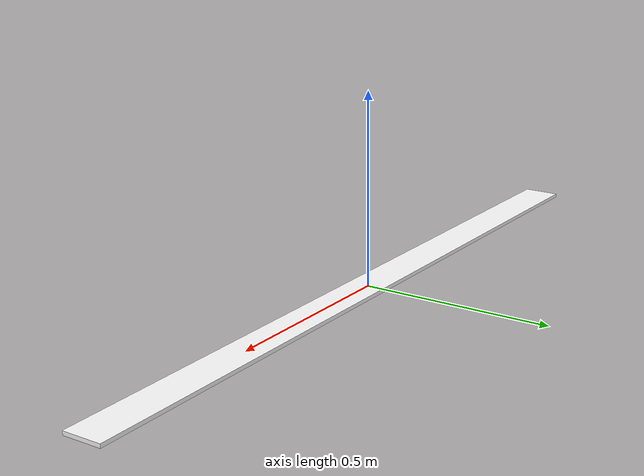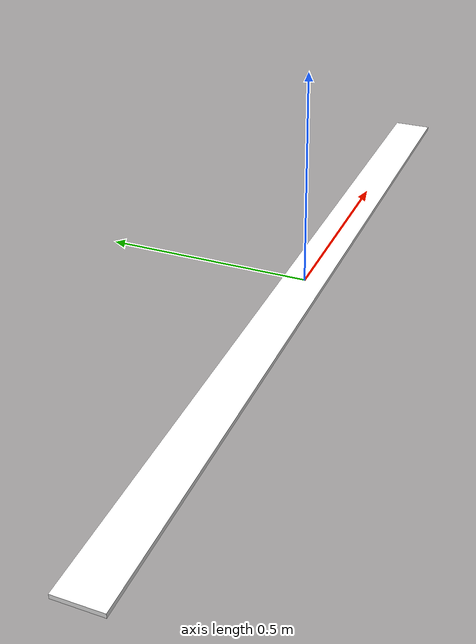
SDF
<?xml version="1.0"?>
<sdf version="1.7">
  <model name="white_line">
    <static>true</static>
    <link name="link">
      <visual name="visual">
        <geometry>
          <box>
            <!-- 默认尺寸：长2m，宽0.1m，高0.01m -->
            <size>2 0.1 0.01</size>
          </box>
        </geometry>
        <material>
          <ambient>1 1 1 1</ambient>
          <diffuse>1 1 1 1</diffuse>
          <specular>0.1 0.1 0.1 1</specular>
          <emissive>0.1 0.1 0.1 1</emissive>
        </material>
      </visual>
      <collision name="collision">
        <geometry>
          <box>
            <size>2 0.1 0.01</size>
          </box>
        </geometry>
        <surface>
          <contact>
            <ode>
              <min_depth>0.001</min_depth>
            </ode>
          </contact>
        </surface>
      </collision>
    </link>
  </model>
</sdf>
